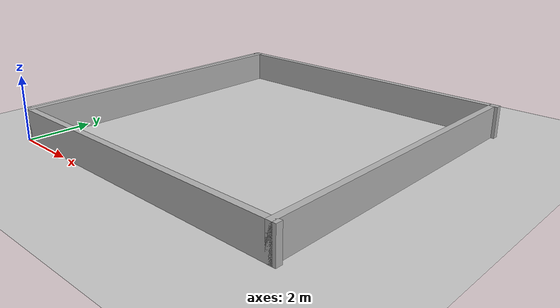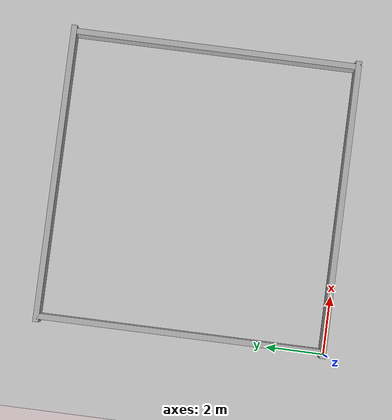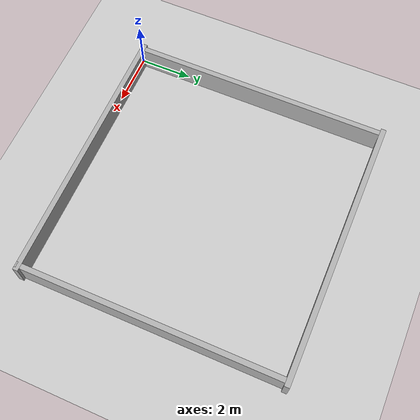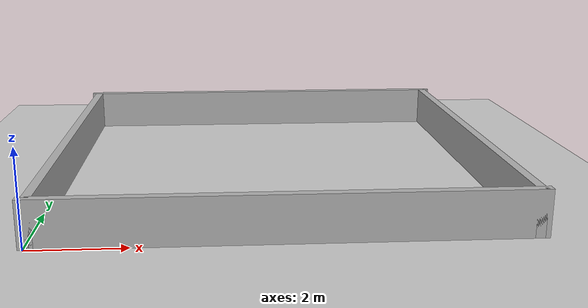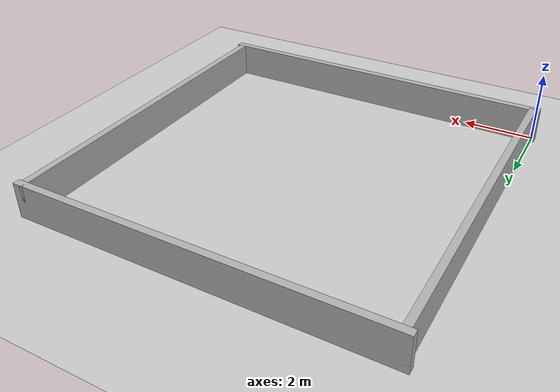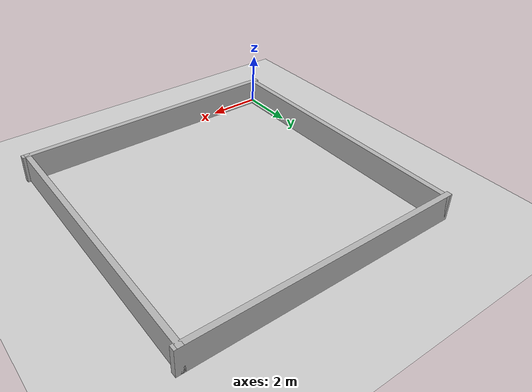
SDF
<?xml version="1.0" ?>
<!--
  Empty single-room environment for sweeping robot simulation.
  Room dimensions: 10 m × 10 m, wall thickness 0.2 m.
-->
<sdf version="1.6">
  <world name="empty_room">

    <!-- Physics -->
    <physics name="default_physics" type="ode">
      <max_step_size>0.001</max_step_size>
      <real_time_factor>1</real_time_factor>
      <real_time_update_rate>1000</real_time_update_rate>
    </physics>

    <!-- Plugins -->
    <plugin name="gazebo_ros_state" filename="libgazebo_ros_state.so">
      <ros>
        <namespace>/gazebo</namespace>
      </ros>
      <update_rate>10.0</update_rate>
    </plugin>

    <!-- Lighting -->
    <light name="sun" type="directional">
      <cast_shadows>true</cast_shadows>
      <pose>0 0 10 0 -0 0</pose>
      <diffuse>1 1 1 1</diffuse>
      <specular>0.5 0.5 0.5 1</specular>
      <attenuation>
        <range>1000</range>
        <constant>0.9</constant>
        <linear>0.01</linear>
        <quadratic>0.001</quadratic>
      </attenuation>
      <direction>-0.5 0.1 -0.9</direction>
    </light>

    <!-- Ground plane -->
    <model name="ground_plane">
      <static>true</static>
      <link name="link">
        <collision name="collision">
          <geometry>
            <plane>
              <normal>0 0 1</normal>
              <size>100 100</size>
            </plane>
          </geometry>
        </collision>
        <visual name="visual">
          <geometry>
            <plane>
              <normal>0 0 1</normal>
              <size>100 100</size>
            </plane>
          </geometry>
          <material>
            <ambient>0.8 0.8 0.8 1</ambient>
            <diffuse>0.8 0.8 0.8 1</diffuse>
          </material>
        </visual>
      </link>
    </model>

    <!-- Room walls -->
    <!-- South wall -->
    <model name="south_wall">
      <static>true</static>
      <pose>5 0.1 0.5 0 0 0</pose>
      <link name="link">
        <collision name="collision">
          <geometry><box><size>10.2 0.2 1.0</size></box></geometry>
        </collision>
        <visual name="visual">
          <geometry><box><size>10.2 0.2 1.0</size></box></geometry>
          <material><ambient>0.7 0.7 0.7 1</ambient></material>
        </visual>
      </link>
    </model>

    <!-- North wall -->
    <model name="north_wall">
      <static>true</static>
      <pose>5 9.9 0.5 0 0 0</pose>
      <link name="link">
        <collision name="collision">
          <geometry><box><size>10.2 0.2 1.0</size></box></geometry>
        </collision>
        <visual name="visual">
          <geometry><box><size>10.2 0.2 1.0</size></box></geometry>
          <material><ambient>0.7 0.7 0.7 1</ambient></material>
        </visual>
      </link>
    </model>

    <!-- West wall -->
    <model name="west_wall">
      <static>true</static>
      <pose>0.1 5 0.5 0 0 0</pose>
      <link name="link">
        <collision name="collision">
          <geometry><box><size>0.2 10.0 1.0</size></box></geometry>
        </collision>
        <visual name="visual">
          <geometry><box><size>0.2 10.0 1.0</size></box></geometry>
          <material><ambient>0.7 0.7 0.7 1</ambient></material>
        </visual>
      </link>
    </model>

    <!-- East wall -->
    <model name="east_wall">
      <static>true</static>
      <pose>9.9 5 0.5 0 0 0</pose>
      <link name="link">
        <collision name="collision">
          <geometry><box><size>0.2 10.0 1.0</size></box></geometry>
        </collision>
        <visual name="visual">
          <geometry><box><size>0.2 10.0 1.0</size></box></geometry>
          <material><ambient>0.7 0.7 0.7 1</ambient></material>
        </visual>
      </link>
    </model>

  </world>
</sdf>
